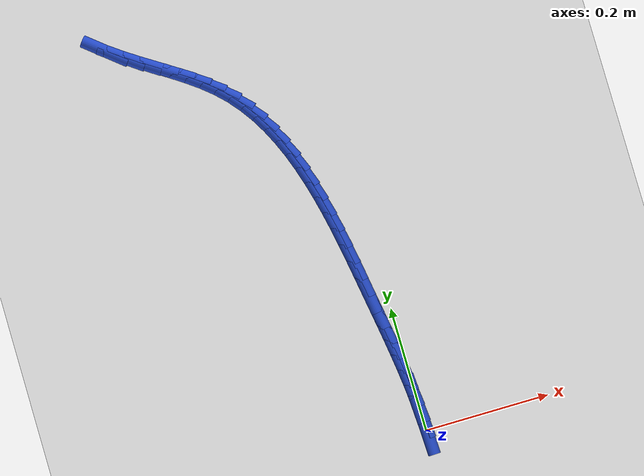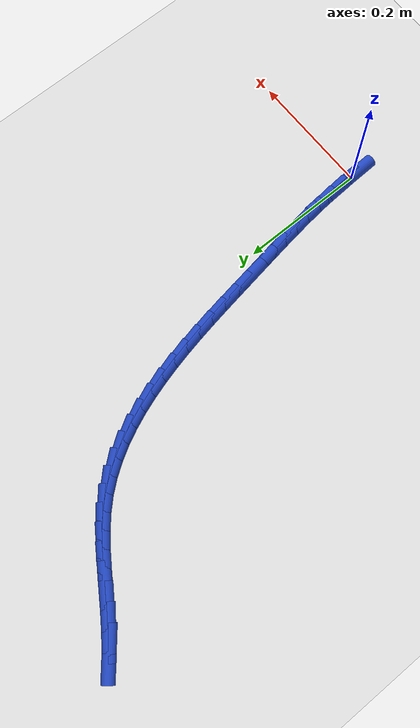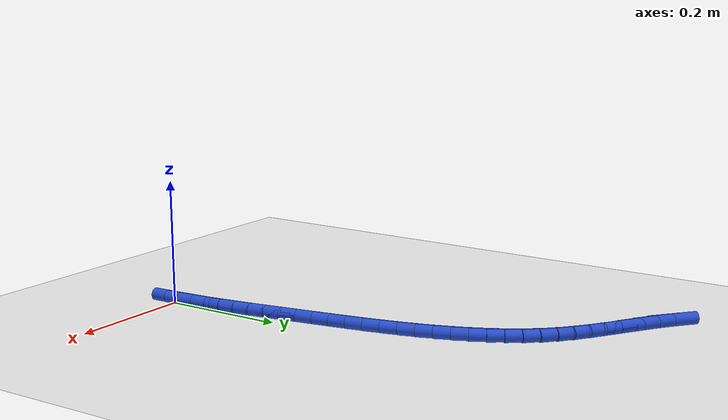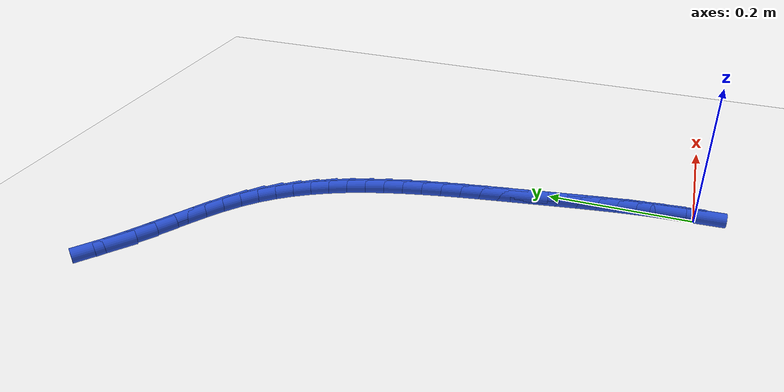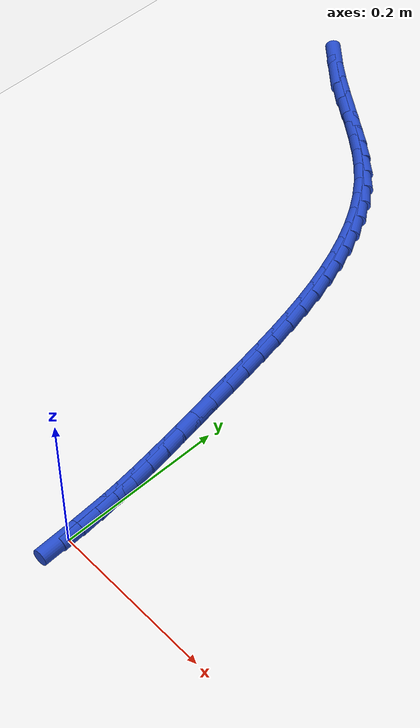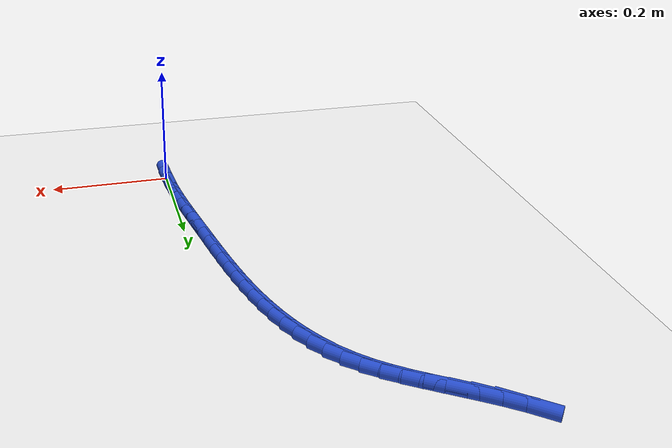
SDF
<sdf version="1.6">
 <world name="default">
  <model name="ground_plane">
   <static>1</static>
   <link name="link">
    <collision name="collision">
     <geometry><plane><normal>0 0 1</normal><size>100 100</size></plane></geometry>
     <surface><friction><ode><mu>100</mu><mu2>50</mu2></ode></friction></surface>
    </collision>
    <visual name="visual">
     <cast_shadows>0</cast_shadows>
     <geometry><plane><normal>0 0 1</normal><size>100 100</size></plane></geometry>
     <material>
      <script><uri>file://media/materials/scripts/gazebo.material</uri><name>Gazebo/WhiteGlow</name></script>
     </material>
    </visual>
   </link>
  </model>
  <model name="line">
   <link name="link_1">
    <pose>-0.000982856391624808 0.02642369952285287 0.01 0 1.57 -1.5039176916772583</pose>
    <collision name="collision">
     <geometry><cylinder><radius>0.01</radius><length>0.08</length></cylinder></geometry>
    </collision>
    <visual name="visual">
     <material>
      <script><name>Gazebo/Blue</name><uri>file://media/materials/scripts/gazebo.material</uri></script>
     </material>
     <geometry><cylinder><radius>0.01</radius><length>0.08</length></cylinder></geometry>
    </visual>
   </link>
   <link name="link_2">
    <pose>-0.002744222687741935 0.05272117790590094 0.01 0 1.57 -1.4781685751957008</pose>
    <collision name="collision">
     <geometry><cylinder><radius>0.01</radius><length>0.08</length></cylinder></geometry>
    </collision>
    <visual name="visual">
     <material>
      <script><name>Gazebo/Blue</name><uri>file://media/materials/scripts/gazebo.material</uri></script>
     </material>
     <geometry><cylinder><radius>0.01</radius><length>0.08</length></cylinder></geometry>
    </visual>
   </link>
   <link name="link_3">
    <pose>-0.005181492058033584 0.07895839978091115 0.01 0 1.57 -1.456576531036775</pose>
    <collision name="collision">
     <geometry><cylinder><radius>0.01</radius><length>0.08</length></cylinder></geometry>
    </collision>
    <visual name="visual">
     <material>
      <script><name>Gazebo/Blue</name><uri>file://media/materials/scripts/gazebo.material</uri></script>
     </material>
     <geometry><cylinder><radius>0.01</radius><length>0.08</length></cylinder></geometry>
    </visual>
   </link>
   <link name="link_4">
    <pose>-0.00819205767218193 0.10520132977965051 0.01 0 1.57 -1.4392664494609209</pose>
    <collision name="collision">
     <geometry><cylinder><radius>0.01</radius><length>0.08</length></cylinder></geometry>
    </collision>
    <visual name="visual">
     <material>
      <script><name>Gazebo/Blue</name><uri>file://media/materials/scripts/gazebo.material</uri></script>
     </material>
     <geometry><cylinder><radius>0.01</radius><length>0.08</length></cylinder></geometry>
    </visual>
   </link>
   <link name="link_5">
    <pose>-0.01167331269986916 0.13151593253388594 0.01 0 1.57 -1.4262903683072554</pose>
    <collision name="collision">
     <geometry><cylinder><radius>0.01</radius><length>0.08</length></cylinder></geometry>
    </collision>
    <visual name="visual">
     <material>
      <script><name>Gazebo/Blue</name><uri>file://media/materials/scripts/gazebo.material</uri></script>
     </material>
     <geometry><cylinder><radius>0.01</radius><length>0.08</length></cylinder></geometry>
    </visual>
   </link>
   <link name="link_6">
    <pose>-0.015522650310777469 0.15796817267538446 0.01 0 1.57 -1.4176370997379664</pose>
    <collision name="collision">
     <geometry><cylinder><radius>0.01</radius><length>0.08</length></cylinder></geometry>
    </collision>
    <visual name="visual">
     <material>
      <script><name>Gazebo/Blue</name><uri>file://media/materials/scripts/gazebo.material</uri></script>
     </material>
     <geometry><cylinder><radius>0.01</radius><length>0.08</length></cylinder></geometry>
    </visual>
   </link>
   <link name="link_7">
    <pose>-0.01963746367458903 0.1846240148359131 0.01 0 1.57 -1.4132415097170756</pose>
    <collision name="collision">
     <geometry><cylinder><radius>0.01</radius><length>0.08</length></cylinder></geometry>
    </collision>
    <visual name="visual">
     <material>
      <script><name>Gazebo/Blue</name><uri>file://media/materials/scripts/gazebo.material</uri></script>
     </material>
     <geometry><cylinder><radius>0.01</radius><length>0.08</length></cylinder></geometry>
    </visual>
   </link>
   <link name="link_8">
    <pose>-0.02391514596098604 0.21154942364723878 0.01 0 1.57 -1.4129508391426517</pose>
    <collision name="collision">
     <geometry><cylinder><radius>0.01</radius><length>0.08</length></cylinder></geometry>
    </collision>
    <visual name="visual">
     <material>
      <script><name>Gazebo/Blue</name><uri>file://media/materials/scripts/gazebo.material</uri></script>
     </material>
     <geometry><cylinder><radius>0.01</radius><length>0.08</length></cylinder></geometry>
    </visual>
   </link>
   <link name="link_9">
    <pose>-0.02825411488879619 0.23880945857655608 0.01 0 1.57 -1.4134061681739547</pose>
    <collision name="collision">
     <geometry><cylinder><radius>0.01</radius><length>0.08</length></cylinder></geometry>
    </collision>
    <visual name="visual">
     <material>
      <script><name>Gazebo/Blue</name><uri>file://media/materials/scripts/gazebo.material</uri></script>
     </material>
     <geometry><cylinder><radius>0.01</radius><length>0.08</length></cylinder></geometry>
    </visual>
   </link>
   <link name="link_10">
    <pose>-0.03263259892591597 0.2663986682103808 0.01 0 1.57 -1.4091634492211198</pose>
    <collision name="collision">
     <geometry><cylinder><radius>0.01</radius><length>0.08</length></cylinder></geometry>
    </collision>
    <visual name="visual">
     <material>
      <script><name>Gazebo/Blue</name><uri>file://media/materials/scripts/gazebo.material</uri></script>
     </material>
     <geometry><cylinder><radius>0.01</radius><length>0.08</length></cylinder></geometry>
    </visual>
   </link>
   <link name="link_11">
    <pose>-0.03716441807337636 0.2941918092710313 0.01 0 1.57 -1.3997590681331178</pose>
    <collision name="collision">
     <geometry><cylinder><radius>0.01</radius><length>0.08</length></cylinder></geometry>
    </collision>
    <visual name="visual">
     <material>
      <script><name>Gazebo/Blue</name><uri>file://media/materials/scripts/gazebo.material</uri></script>
     </material>
     <geometry><cylinder><radius>0.01</radius><length>0.08</length></cylinder></geometry>
    </visual>
   </link>
   <link name="link_12">
    <pose>-0.041976565049787536 0.32205200070109957 0.01 0 1.57 -1.385143365111799</pose>
    <collision name="collision">
     <geometry><cylinder><radius>0.01</radius><length>0.08</length></cylinder></geometry>
    </collision>
    <visual name="visual">
     <material>
      <script><name>Gazebo/Blue</name><uri>file://media/materials/scripts/gazebo.material</uri></script>
     </material>
     <geometry><cylinder><radius>0.01</radius><length>0.08</length></cylinder></geometry>
    </visual>
   </link>
   <link name="link_13">
    <pose>-0.04719603257375975 0.34984236144317804 0.01 0 1.57 -1.3651512273421436</pose>
    <collision name="collision">
     <geometry><cylinder><radius>0.01</radius><length>0.08</length></cylinder></geometry>
    </collision>
    <visual name="visual">
     <material>
      <script><name>Gazebo/Blue</name><uri>file://media/materials/scripts/gazebo.material</uri></script>
     </material>
     <geometry><cylinder><radius>0.01</radius><length>0.08</length></cylinder></geometry>
    </visual>
   </link>
   <link name="link_14">
    <pose>-0.05294981336390316 0.3774260104398588 0.01 0 1.57 -1.3395087243358954</pose>
    <collision name="collision">
     <geometry><cylinder><radius>0.01</radius><length>0.08</length></cylinder></geometry>
    </collision>
    <visual name="visual">
     <material>
      <script><name>Gazebo/Blue</name><uri>file://media/materials/scripts/gazebo.material</uri></script>
     </material>
     <geometry><cylinder><radius>0.01</radius><length>0.08</length></cylinder></geometry>
    </visual>
   </link>
   <link name="link_15">
    <pose>-0.05936490013882802 0.40466606663373406 0.01 0 1.57 -1.3078405323385325</pose>
    <collision name="collision">
     <geometry><cylinder><radius>0.01</radius><length>0.08</length></cylinder></geometry>
    </collision>
    <visual name="visual">
     <material>
      <script><name>Gazebo/Blue</name><uri>file://media/materials/scripts/gazebo.material</uri></script>
     </material>
     <geometry><cylinder><radius>0.01</radius><length>0.08</length></cylinder></geometry>
    </visual>
   </link>
   <link name="link_16">
    <pose>-0.06656828561714451 0.431425648967396 0.01 0 1.57 -1.269681693030669</pose>
    <collision name="collision">
     <geometry><cylinder><radius>0.01</radius><length>0.08</length></cylinder></geometry>
    </collision>
    <visual name="visual">
     <material>
      <script><name>Gazebo/Blue</name><uri>file://media/materials/scripts/gazebo.material</uri></script>
     </material>
     <geometry><cylinder><radius>0.01</radius><length>0.08</length></cylinder></geometry>
    </visual>
   </link>
   <link name="link_17">
    <pose>-0.07468696251746283 0.4575678763834366 0.01 0 1.57 -1.2244987757503798</pose>
    <collision name="collision">
     <geometry><cylinder><radius>0.01</radius><length>0.08</length></cylinder></geometry>
    </collision>
    <visual name="visual">
     <material>
      <script><name>Gazebo/Blue</name><uri>file://media/materials/scripts/gazebo.material</uri></script>
     </material>
     <geometry><cylinder><radius>0.01</radius><length>0.08</length></cylinder></geometry>
    </visual>
   </link>
   <link name="link_18">
    <pose>-0.08384792355839318 0.4829558678244483 0.01 0 1.57 -1.1717273853085721</pose>
    <collision name="collision">
     <geometry><cylinder><radius>0.01</radius><length>0.08</length></cylinder></geometry>
    </collision>
    <visual name="visual">
     <material>
      <script><name>Gazebo/Blue</name><uri>file://media/materials/scripts/gazebo.material</uri></script>
     </material>
     <geometry><cylinder><radius>0.01</radius><length>0.08</length></cylinder></geometry>
    </visual>
   </link>
   <link name="link_19">
    <pose>-0.09417816145854581 0.5074527422330231 0.01 0 1.57 -1.110834590112707</pose>
    <collision name="collision">
     <geometry><cylinder><radius>0.01</radius><length>0.08</length></cylinder></geometry>
    </collision>
    <visual name="visual">
     <material>
      <script><name>Gazebo/Blue</name><uri>file://media/materials/scripts/gazebo.material</uri></script>
     </material>
     <geometry><cylinder><radius>0.01</radius><length>0.08</length></cylinder></geometry>
    </visual>
   </link>
   <link name="link_20">
    <pose>-0.10580466893653086 0.5309216185517531 0.01 0 1.57 -1.041414743018342</pose>
    <collision name="collision">
     <geometry><cylinder><radius>0.01</radius><length>0.08</length></cylinder></geometry>
    </collision>
    <visual name="visual">
     <material>
      <script><name>Gazebo/Blue</name><uri>file://media/materials/scripts/gazebo.material</uri></script>
     </material>
     <geometry><cylinder><radius>0.01</radius><length>0.08</length></cylinder></geometry>
    </visual>
   </link>
   <link name="link_21">
    <pose>-0.11885443871095866 0.553225615723231 0.01 0 1.57 -0.96332255323922</pose>
    <collision name="collision">
     <geometry><cylinder><radius>0.01</radius><length>0.08</length></cylinder></geometry>
    </collision>
    <visual name="visual">
     <material>
      <script><name>Gazebo/Blue</name><uri>file://media/materials/scripts/gazebo.material</uri></script>
     </material>
     <geometry><cylinder><radius>0.01</radius><length>0.08</length></cylinder></geometry>
    </visual>
   </link>
   <link name="link_22">
    <pose>-0.1334544635004393 0.5742278526900485 0.01 0 1.57 -0.8768345508542901</pose>
    <collision name="collision">
     <geometry><cylinder><radius>0.01</radius><length>0.08</length></cylinder></geometry>
    </collision>
    <visual name="visual">
     <material>
      <script><name>Gazebo/Blue</name><uri>file://media/materials/scripts/gazebo.material</uri></script>
     </material>
     <geometry><cylinder><radius>0.01</radius><length>0.08</length></cylinder></geometry>
    </visual>
   </link>
   <link name="link_23">
    <pose>-0.14973173602358297 0.5937914483947977 0.01 0 1.57 -0.7833844180487131</pose>
    <collision name="collision">
     <geometry><cylinder><radius>0.01</radius><length>0.08</length></cylinder></geometry>
    </collision>
    <visual name="visual">
     <material>
      <script><name>Gazebo/Blue</name><uri>file://media/materials/scripts/gazebo.material</uri></script>
     </material>
     <geometry><cylinder><radius>0.01</radius><length>0.08</length></cylinder></geometry>
    </visual>
   </link>
   <link name="link_24">
    <pose>-0.1678031843455397 0.6117902602998103 0.01 0 1.57 -0.6978880449947527</pose>
    <collision name="collision">
     <geometry><cylinder><radius>0.01</radius><length>0.08</length></cylinder></geometry>
    </collision>
    <visual name="visual">
     <material>
      <script><name>Gazebo/Blue</name><uri>file://media/materials/scripts/gazebo.material</uri></script>
     </material>
     <geometry><cylinder><radius>0.01</radius><length>0.08</length></cylinder></geometry>
    </visual>
   </link>
   <link name="link_25">
    <pose>-0.1875489805146812 0.6283507535870546 0.01 0 1.57 -0.6345981497628191</pose>
    <collision name="collision">
     <geometry><cylinder><radius>0.01</radius><length>0.08</length></cylinder></geometry>
    </collision>
    <visual name="visual">
     <material>
      <script><name>Gazebo/Blue</name><uri>file://media/materials/scripts/gazebo.material</uri></script>
     </material>
     <geometry><cylinder><radius>0.01</radius><length>0.08</length></cylinder></geometry>
    </visual>
   </link>
   <link name="link_26">
    <pose>-0.20860957581595085 0.6438551644056875 0.01 0 1.57 -0.5933884863013864</pose>
    <collision name="collision">
     <geometry><cylinder><radius>0.01</radius><length>0.08</length></cylinder></geometry>
    </collision>
    <visual name="visual">
     <material>
      <script><name>Gazebo/Blue</name><uri>file://media/materials/scripts/gazebo.material</uri></script>
     </material>
     <geometry><cylinder><radius>0.01</radius><length>0.08</length></cylinder></geometry>
    </visual>
   </link>
   <link name="link_27">
    <pose>-0.23061476390271546 0.6586971001048308 0.01 0 1.57 -0.5731412592341645</pose>
    <collision name="collision">
     <geometry><cylinder><radius>0.01</radius><length>0.08</length></cylinder></geometry>
    </collision>
    <visual name="visual">
     <material>
      <script><name>Gazebo/Blue</name><uri>file://media/materials/scripts/gazebo.material</uri></script>
     </material>
     <geometry><cylinder><radius>0.01</radius><length>0.08</length></cylinder></geometry>
    </visual>
   </link>
   <link name="link_28">
    <pose>-0.25319433842834144 0.6732701680336054 0.01 0 1.57 -0.5729230941366822</pose>
    <collision name="collision">
     <geometry><cylinder><radius>0.01</radius><length>0.08</length></cylinder></geometry>
    </collision>
    <visual name="visual">
     <material>
      <script><name>Gazebo/Blue</name><uri>file://media/materials/scripts/gazebo.material</uri></script>
     </material>
     <geometry><cylinder><radius>0.01</radius><length>0.08</length></cylinder></geometry>
    </visual>
   </link>
   <link name="link_29">
    <pose>-0.27597809304619525 0.6879679755411329 0.01 0 1.57 -0.5922046900586779</pose>
    <collision name="collision">
     <geometry><cylinder><radius>0.01</radius><length>0.08</length></cylinder></geometry>
    </collision>
    <visual name="visual">
     <material>
      <script><name>Gazebo/Blue</name><uri>file://media/materials/scripts/gazebo.material</uri></script>
     </material>
     <geometry><cylinder><radius>0.01</radius><length>0.08</length></cylinder></geometry>
    </visual>
   </link>
   <link name="link_30">
    <pose>-0.29859582140964364 0.7031841299765341 0.01 0 1.57 -0.6308322780184294</pose>
    <collision name="collision">
     <geometry><cylinder><radius>0.01</radius><length>0.08</length></cylinder></geometry>
    </collision>
    <visual name="visual">
     <material>
      <script><name>Gazebo/Blue</name><uri>file://media/materials/scripts/gazebo.material</uri></script>
     </material>
     <geometry><cylinder><radius>0.01</radius><length>0.08</length></cylinder></geometry>
    </visual>
   </link>
   <link name="link_31">
    <pose>-0.3206773171720529 0.7193122386889302 0.01 0 1.57 -0.6887738274015756</pose>
    <collision name="collision">
     <geometry><cylinder><radius>0.01</radius><length>0.08</length></cylinder></geometry>
    </collision>
    <visual name="visual">
     <material>
      <script><name>Gazebo/Blue</name><uri>file://media/materials/scripts/gazebo.material</uri></script>
     </material>
     <geometry><cylinder><radius>0.01</radius><length>0.08</length></cylinder></geometry>
    </visual>
   </link>
   <link name="link_270">
    <pose>-2.6020852139652106e-18 1.8735013540549517e-16 0.01 0 1.57 -1.5328517061839557</pose>
    <collision name="collision">
     <geometry><cylinder><radius>0.01</radius><length>0.08</length></cylinder></geometry>
    </collision>
    <visual name="visual">
     <material>
      <script><name>Gazebo/Blue</name><uri>file://media/materials/scripts/gazebo.material</uri></script>
     </material>
     <geometry><cylinder><radius>0.01</radius><length>0.08</length></cylinder></geometry>
    </visual>
   </link>
   <link name="link_271">
    <pose>-0.0010022801975712332 0.026401611335511225 0.01 0 1.57 -1.4983477833058854</pose>
    <collision name="collision">
     <geometry><cylinder><radius>0.01</radius><length>0.08</length></cylinder></geometry>
    </collision>
    <visual name="visual">
     <material>
      <script><name>Gazebo/Blue</name><uri>file://media/materials/scripts/gazebo.material</uri></script>
     </material>
     <geometry><cylinder><radius>0.01</radius><length>0.08</length></cylinder></geometry>
    </visual>
   </link>
   <link name="link_272">
    <pose>-0.0028996131353132316 0.0525444724071636 0.01 0 1.57 -1.5156682610056016</pose>
    <collision name="collision">
     <geometry><cylinder><radius>0.01</radius><length>0.08</length></cylinder></geometry>
    </collision>
    <visual name="visual">
     <material>
      <script><name>Gazebo/Blue</name><uri>file://media/materials/scripts/gazebo.material</uri></script>
     </material>
     <geometry><cylinder><radius>0.01</radius><length>0.08</length></cylinder></geometry>
    </visual>
   </link>
  </model>
 </world>
</sdf>
